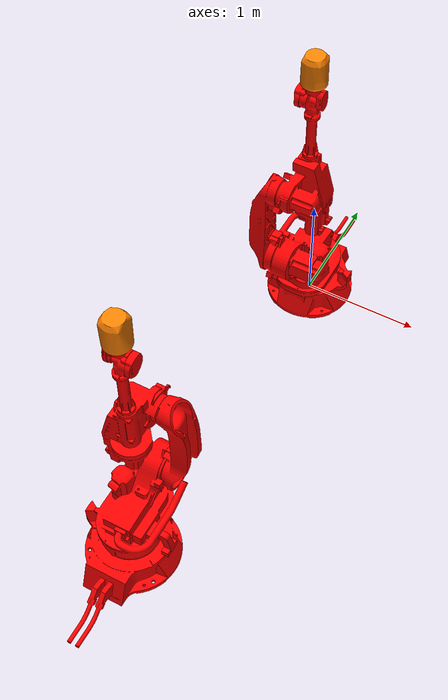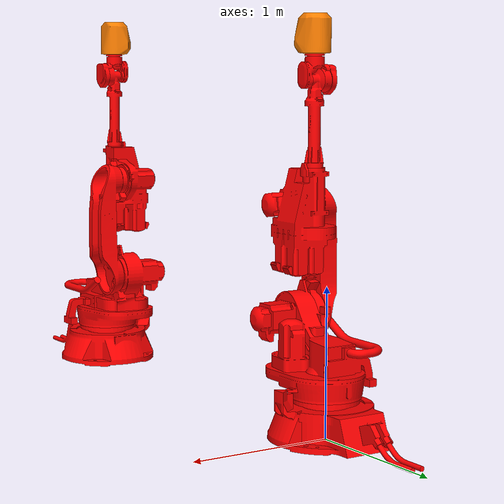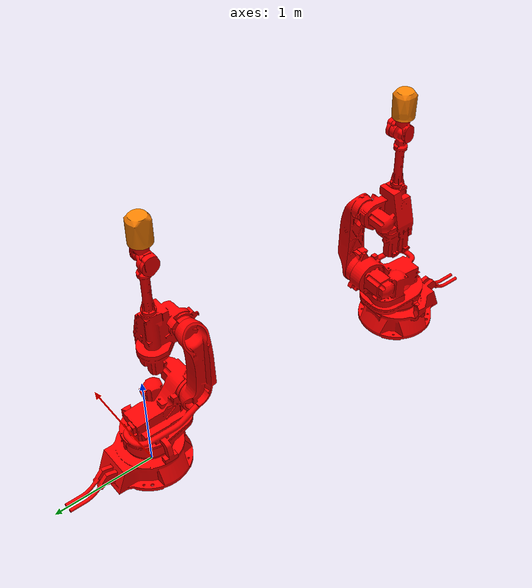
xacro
<?xml version="1.0" ?>
<robot name="Smart_NM45_Dual" xmlns:xacro="http://ros.org/wiki/xacro">
	<include filename="$(find comau_config)/cfg/NM45_Dual_mesh_macro.xacro" />
	<!--include filename="$(find robotiq_s_model_visualization)/cfg/s-model_articulated_macro.xacro" /-->
	<xacro:NM45_Dual_mesh prefix=""/>
	<!--xacro:s-model_articulated prefix=""/-->
  <!-- link list -->
		<link name="eff_stack_1">
			<visual>
				<geometry>
					<mesh filename="package://comau_config/meshes/visual/Effector_stack.STL" />
				</geometry>
				<material name="orange">
					<color rgba="1 0.5 0 1"/>
				</material>
			</visual>
			<collision>
				<geometry>
					<mesh filename="package://comau_config/meshes/collision/Effector_stack_CH.STL" />
				</geometry>
				<material name="yellow">
					<color rgba="0 1 1 1"/>
				</material>
			</collision>
		</link>
		<link name="eff_stack_2">
			<visual>
				<geometry>
					<mesh filename="package://comau_config/meshes/visual/Effector_stack.STL" />
				</geometry>
				<material name="orange">
					<color rgba="1 0.5 0 1"/>
				</material>
			</visual>
			<collision>
				<geometry>
					<mesh filename="package://comau_config/meshes/collision/Effector_stack_CH.STL" />
				</geometry>
				<material name="yellow">
					<color rgba="0 1 1 1"/>
				</material>
			</collision>
		</link>
  <!-- end link list -->
  <!-- joint list -->
		<joint name="flange2stack_1" type="fixed">
			<parent link="link6_1"/>
			<child link="eff_stack_1"/>
			<origin xyz="0.025 0 0" rpy="0 1.57 0"/>
		</joint>
		<joint name="flange2stack_2" type="fixed">
			<parent link="link6_2"/>
			<child link="eff_stack_2"/>
			<origin xyz="0.025 0 0" rpy="0 1.57 0"/>
		</joint>
  <!-- end of joint list -->

</robot>

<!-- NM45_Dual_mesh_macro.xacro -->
<robot xmlns:xacro="http://ros.org/wiki/xacro">
	<xacro:macro name="NM45_Dual_mesh" params="prefix">
		<!-- link list -->
		<link name="${prefix}base_link">
		</link>
		<link name="${prefix}link0_1">
			<visual>
				<geometry>
					<mesh filename="package://comau_config/meshes/visual/NM-45_Base.STL" />
				</geometry>
				<material name="red">
					<color rgba="1 0 0 1"/>
				</material>
			</visual>
			<collision>
				<geometry>
					<mesh filename="package://comau_config/meshes/collision/NM-45_Base_CH.STL" />
				</geometry>
				<material name="yellow">
					<color rgba="0 1 1 1"/>
				</material>
			</collision>
		</link>
		<link name="${prefix}link1_1">
			<visual>
				<origin rpy="0 0 0" xyz="0 0 0"/>
				<geometry>

					<mesh filename="package://comau_config/meshes/visual/NM-45_Link1.STL"/>
				</geometry>
				<material name="red">
					<color rgba="1 0 0 1"/>
				</material>
			</visual>
			<collision>
				<origin rpy="0 0 0" xyz="0 0 0"/>
				<geometry>
					<mesh filename="package://comau_config/meshes/collision/NM-45_Link1_CH.STL" />
				</geometry>
				<material name="yellow"/>
			</collision>
		</link>
		<link name="${prefix}link2_1">
			<visual>
				<origin rpy="0 0 0" xyz="0 0 0"/>
				<geometry>
					<mesh filename="package://comau_config/meshes/visual/NM-45_Link2.STL"/>
				</geometry>
				<material name="red"/>
			</visual>
			<collision>
				<origin rpy="0 0 0" xyz="0 0 0"/>
				<geometry>
					<mesh filename="package://comau_config/meshes/collision/NM-45_Link2_CH.STL"/>
				</geometry>
				<material name="yellow"/>
			</collision>
		</link>
		<link name="${prefix}link3_1">
			<visual>
				<origin rpy="0 0 0" xyz="0 0 0"/>
				<geometry>
					<mesh filename="package://comau_config/meshes/visual/NM-45_Link3.STL"/>
				</geometry>
				<material name="red"/>
			</visual>
			<collision>
				<origin rpy="0 0 0" xyz="0 0 0"/>
				<geometry>
					<mesh filename="package://comau_config/meshes/collision/NM-45_Link3_CH.STL"/>
				</geometry>
				<material name="yellow"/>
			</collision>
		</link>
		<link name="${prefix}link4_1">
			<visual>
				<origin rpy="0 0 0" xyz="0 0 0"/>
				<geometry>
					<mesh filename="package://comau_config/meshes/visual/NM-45_Link4.STL"/>
				</geometry>
				<material name="red"/>
			</visual>
			<collision>
				<origin rpy="0 0 0" xyz="0 0 0"/>
				<geometry>
					<mesh filename="package://comau_config/meshes/collision/NM-45_Link4_CH.STL"/>
				</geometry>
				<material name="yellow"/>
			</collision>
		</link>
		<link name="${prefix}link5_1">
			<visual>
				<origin rpy="0 0 0" xyz="0 0 0"/>
				<geometry>
					<mesh filename="package://comau_config/meshes/visual/NM-45_Link5.STL"/>
				</geometry>
				<material name="red"/>
			</visual>
			<collision>
				<origin rpy="0 0 0" xyz="0 0 0"/>
				<geometry>
					<mesh filename="package://comau_config/meshes/collision/NM-45_Link5_CH.STL"/>
				</geometry>
				<material name="yellow"/>
			</collision>
		</link>
		<link name="${prefix}link6_1">
			<visual>
				<origin rpy="0 0 0" xyz="0 0 0"/>
				<geometry>
					<mesh filename="package://comau_config/meshes/visual/NM-45_Link6.STL"/>
				</geometry>
				<material name="red"/>
			</visual>
			<collision>
				<origin rpy="0 0 0" xyz="0 0 0"/>
				<geometry>
					<mesh filename="package://comau_config/meshes/collision/NM-45_Link6_CH.STL"/>
				</geometry>
				<material name="yellow"/>
			</collision>
		</link>

		<link name="${prefix}link0_2">
			<visual>
				<origin rpy="0 0 0" xyz="0 0 0"/>
				<geometry>
					<mesh filename="package://comau_config/meshes/visual/NM-45_Base.STL" />
				</geometry>
				<material name="red">
					<color rgba="1 0 0 1"/>
				</material>
			</visual>
			<collision>
				<geometry>
					<mesh filename="package://comau_config/meshes/collision/NM-45_Base_CH.STL" />
				</geometry>
				<material name="yellow">
					<color rgba="0 1 1 1"/>
				</material>
			</collision>
		</link>
		<link name="${prefix}link1_2">
			<visual>
				<origin rpy="0 0 0" xyz="0 0 0"/>
				<geometry>
					<mesh filename="package://comau_config/meshes/visual/NM-45_Link1.STL"/>
				</geometry>
				<material name="red">
					<color rgba="1 0 0 1"/>
				</material>
			</visual>
			<collision>
				<origin rpy="0 0 0" xyz="0 0 0"/>
				<geometry>
					<mesh filename="package://comau_config/meshes/collision/NM-45_Link1_CH.STL" />
				</geometry>
				<material name="yellow"/>
			</collision>
		</link>
		<link name="${prefix}link2_2">
			<visual>
				<origin rpy="0 0 0" xyz="0 0 0"/>
				<geometry>
					<mesh filename="package://comau_config/meshes/visual/NM-45_Link2.STL"/>
				</geometry>
				<material name="red"/>
			</visual>
			<collision>
				<origin rpy="0 0 0" xyz="0 0 0"/>
				<geometry>
					<mesh filename="package://comau_config/meshes/collision/NM-45_Link2_CH.STL"/>
				</geometry>
				<material name="yellow"/>
			</collision>
		</link>
		<link name="${prefix}link3_2">
			<visual>
				<origin rpy="0 0 0" xyz="0 0 0"/>
				<geometry>
					<mesh filename="package://comau_config/meshes/visual/NM-45_Link3.STL"/>
				</geometry>
				<material name="red"/>
			</visual>
			<collision>
				<origin rpy="0 0 0" xyz="0 0 0"/>
				<geometry>
					<mesh filename="package://comau_config/meshes/collision/NM-45_Link3_CH.STL"/>
				</geometry>
				<material name="yellow"/>
			</collision>
		</link>
		<link name="${prefix}link4_2">
			<visual>
				<origin rpy="0 0 0" xyz="0 0 0"/>
				<geometry>
					<mesh filename="package://comau_config/meshes/visual/NM-45_Link4.STL"/>
				</geometry>
				<material name="red"/>
			</visual>
			<collision>
				<origin rpy="0 0 0" xyz="0 0 0"/>
				<geometry>
					<mesh filename="package://comau_config/meshes/collision/NM-45_Link4_CH.STL"/>
				</geometry>
				<material name="yellow"/>
			</collision>
		</link>
		<link name="${prefix}link5_2">
			<visual>
				<origin rpy="0 0 0" xyz="0 0 0"/>
				<geometry>
					<mesh filename="package://comau_config/meshes/visual/NM-45_Link5.STL"/>
				</geometry>
				<material name="red"/>
			</visual>
			<collision>
				<origin rpy="0 0 0" xyz="0 0 0"/>
				<geometry>
					<mesh filename="package://comau_config/meshes/collision/NM-45_Link5_CH.STL"/>
				</geometry>
				<material name="yellow"/>
			</collision>
		</link>
		<link name="${prefix}link6_2">
			<visual>
				<origin rpy="0 0 0" xyz="0 0 0"/>
				<geometry>
					<mesh filename="package://comau_config/meshes/visual/NM-45_Link6.STL"/>
				</geometry>
				<material name="red"/>
			</visual>
			<collision>
				<origin rpy="0 0 0" xyz="0 0 0"/>
				<geometry>
					<mesh filename="package://comau_config/meshes/collision/NM-45_Link6_CH.STL"/>
				</geometry>
				<material name="yellow"/>
			</collision>
		</link>
		<!-- end of link list -->
		<!-- joint list -->
		<joint name="${prefix}joint0_1" type="fixed">
			<parent link="${prefix}base_link"/>
			<child link="${prefix}link0_1"/>
			<origin xyz="0 0 0" rpy="0 0 -1.57"/>
			<!--origin xyz="0 0 0" rpy="0 0 0"/-->
		</joint>
		<joint name="${prefix}joint1_1" type="revolute">
			<parent link="${prefix}link0_1"/>
			<child link="${prefix}link1_1"/>
			<origin xyz="0 0 0.305" rpy="0 0 0"/>
			<axis xyz="0 0 -1" />
			<limit lower="-3.1416" upper="3.1416" effort="100" velocity="2.26" />
		</joint>
		<joint name="${prefix}joint2_1" type="revolute">
			<parent link="${prefix}link1_1"/>
			<child link="${prefix}link2_1"/>
			<origin xyz="0.4 -0.130 0.445" rpy="0 -1.57 0"/>
			<axis xyz="0 1 0" />
			<limit lower="-0.733" upper="2.269" effort="100" velocity="2.26" />
		</joint>
		<joint name="${prefix}joint3_1" type="revolute">
			<parent link="${prefix}link2_1"/>
			<child link="${prefix}link3_1"/>
			<origin xyz="0.75 0.01 0" rpy="0 0 0"/>
			<axis xyz="0 -1 0" />
			<limit lower="-2.967" upper="1.92" effort="100" velocity="2.96" />
		</joint>
		<joint name="${prefix}joint4_1" type="revolute">
			<parent link="${prefix}link3_1"/>
			<child link="${prefix}link4_1"/>
			<origin xyz="0.234 0.120 0.250" rpy="0 0 0"/>
			<axis xyz="-1 0 0" />
			<limit lower="-3.1416" upper="3.1416" effort="100" velocity="2.96" />
		</joint>
		<joint name="${prefix}joint5_1" type="revolute">
			<parent link="${prefix}link4_1"/>
			<child link="${prefix}link5_1"/>
			<origin xyz="0.578 0 0" rpy="0 0 0"/>
			<axis xyz="0 1 0" />
			<limit lower="-2.147" upper="2.147" effort="100" velocity="3.48" />
		</joint>
		<joint name="${prefix}joint6_1" type="revolute">
			<parent link="${prefix}link5_1"/>
			<child link="${prefix}link6_1"/>
			<origin xyz="0.150 0 0" rpy="0 0 0"/>
			<axis xyz="-1 0 0" />
			<limit lower="-3.1416" upper="3.1416" effort="100" velocity="3.48" />
		</joint>

		<joint name="${prefix}joint0_2" type="fixed">
			<parent link="${prefix}base_link"/>
			<child link="${prefix}link0_2"/>
			<origin xyz="0 -3 0" rpy="0 0 1.57"/>
			<!--origin xyz="0 -2 0" rpy="0 0 1.57"/-->
			<!--origin xyz="0 -2 0" rpy="0 0 0"/-->
		</joint>
		<joint name="${prefix}joint1_2" type="revolute">
			<parent link="${prefix}link0_2"/>
			<child link="${prefix}link1_2"/>
			<origin xyz="0 0 0.305" rpy="0 0 0"/>
			<axis xyz="0 0 -1" />
			<limit lower="-3.1416" upper="3.1416" effort="100" velocity="2.26" />
		</joint>
		<joint name="${prefix}joint2_2" type="revolute">
			<parent link="${prefix}link1_2"/>
			<child link="${prefix}link2_2"/>
			<origin xyz="0.4 -0.130 0.445" rpy="0 -1.57 0"/>
			<axis xyz="0 1 0" />
			<limit lower="-0.733" upper="2.269" effort="100" velocity="2.26" />
		</joint>
		<joint name="${prefix}joint3_2" type="revolute">
			<parent link="${prefix}link2_2"/>
			<child link="${prefix}link3_2"/>
			<origin xyz="0.75 0.01 0" rpy="0 0 0"/>
			<axis xyz="0 -1 0" />
			<limit lower="-2.967" upper="1.92" effort="100" velocity="2.96" />
		</joint>
		<joint name="${prefix}joint4_2" type="revolute">
			<parent link="${prefix}link3_2"/>
			<child link="${prefix}link4_2"/>
			<origin xyz="0.234 0.120 0.250" rpy="0 0 0"/>
			<axis xyz="-1 0 0" />
			<limit lower="-3.1416" upper="3.1416" effort="100" velocity="2.96" />
		</joint>
		<joint name="${prefix}joint5_2" type="revolute">
			<parent link="${prefix}link4_2"/>
			<child link="${prefix}link5_2"/>
			<origin xyz="0.578 0 0" rpy="0 0 0"/>
			<axis xyz="0 1 0" />
			<limit lower="-2.147" upper="2.147" effort="100" velocity="3.48" />
		</joint>
		<joint name="${prefix}joint6_2" type="revolute">
			<parent link="${prefix}link5_2"/>
			<child link="${prefix}link6_2"/>
			<origin xyz="0.150 0 0" rpy="0 0 0"/>
			<axis xyz="-1 0 0" />
			<limit lower="-3.1416" upper="3.1416" effort="100" velocity="3.48" />
		</joint>
		<!-- end of joint list -->
	</xacro:macro>
</robot>
